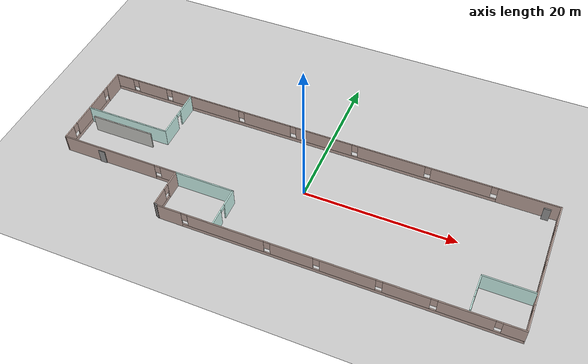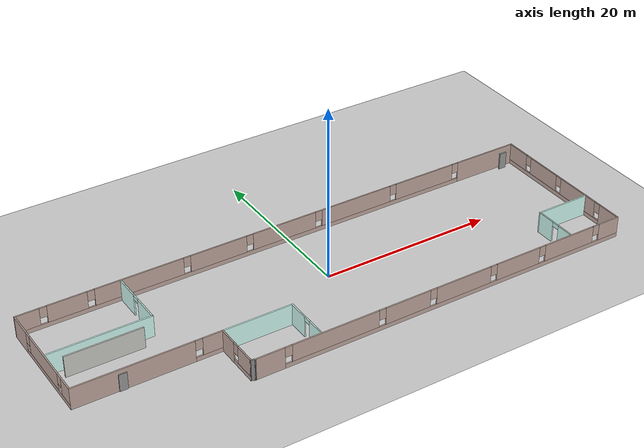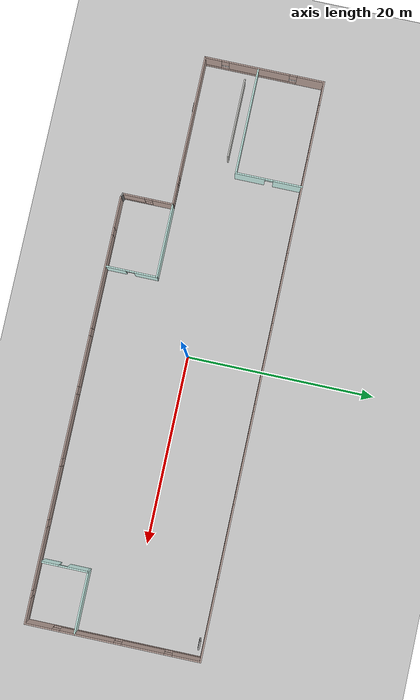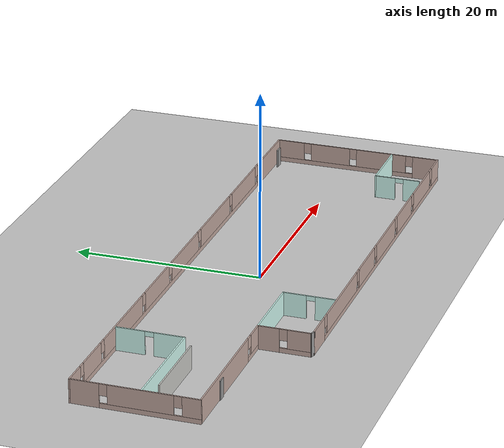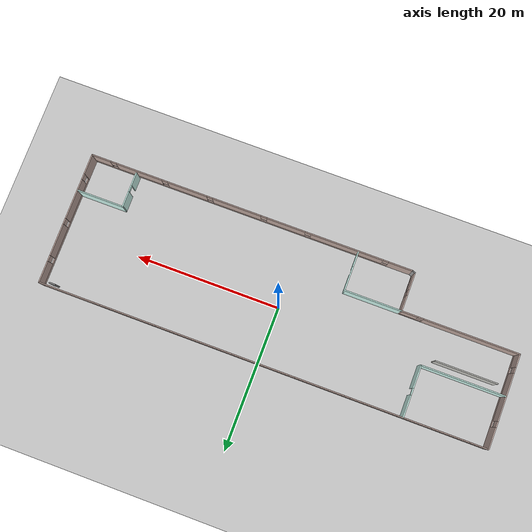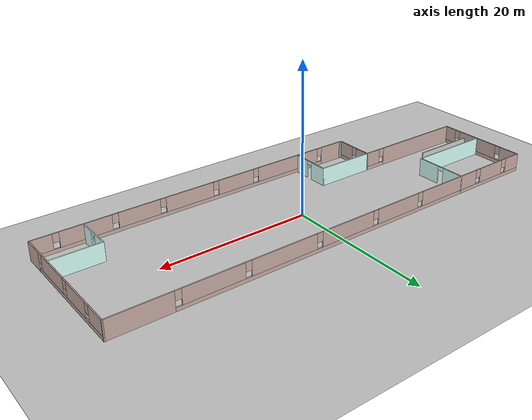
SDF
<sdf version="1.6">
 <world name="default">
  <model name="ground_plane">
   <static>1</static>
   <link name="link">
    <collision name="collision">
     <geometry><plane><normal>0 0 1</normal><size>100 100</size></plane></geometry>
     <surface>
      <contact><collide_bitmask>65535</collide_bitmask></contact>
      <friction><ode><mu>100</mu><mu2>50</mu2></ode></friction>
     </surface>
    </collision>
    <visual name="visual">
     <cast_shadows>0</cast_shadows>
     <geometry><plane><normal>0 0 1</normal><size>100 100</size></plane></geometry>
     <material>
      <script><uri>file://media/materials/scripts/gazebo.material</uri><name>Gazebo/Grey</name></script>
     </material>
    </visual>
   </link>
  </model>
  <model name="Building">
   <pose>-0.5104 -1.23056 0 0 -0 0</pose>
   <link name="Door_2">
    <collision name="Door_2_Collision">
     <geometry><box><size>0.9 0.17 2</size></box></geometry>
     <pose>0 0 1 0 -0 0</pose>
    </collision>
    <visual name="Door_2_Visual">
     <pose>0 0 1 0 -0 0</pose>
     <geometry><box><size>0.9 0.17 2</size></box></geometry>
     <material>
      <script><uri>file://media/materials/scripts/gazebo.material</uri><name>Gazebo/Grey</name></script>
     </material>
    </visual>
    <pose>-25.4725 -3.75552 0 0 -0 0</pose>
   </link>
   <link name="Door_3">
    <collision name="Door_3_Collision">
     <geometry><box><size>0.9 0.17 2</size></box></geometry>
     <pose>0 0 1 0 -0 0</pose>
    </collision>
    <visual name="Door_3_Visual">
     <pose>0 0 1 0 -0 0</pose>
     <geometry><box><size>0.9 0.17 2</size></box></geometry>
     <material>
      <script><uri>file://media/materials/scripts/gazebo.material</uri><name>Gazebo/Grey</name></script>
     </material>
    </visual>
    <pose>29.2873 8.73464 0 0 -0 0</pose>
   </link>
   <link name="Wall_21">
    <pose>8.25 -9.16807 0 0 -0 0</pose>
    <visual name="Wall_21_Visual_0">
     <pose>-20.9527 0 1.25 0 -0 0</pose>
     <geometry><box><size>3.34458 0.15 2.5</size></box></geometry>
     <material>
      <script><uri>file://media/materials/scripts/gazebo.material</uri><name>Gazebo/Grey</name></script>
      <ambient>0.760784 0.662745 0.627451 1</ambient>
     </material>
     <meta><layer>0</layer></meta>
    </visual>
    <collision name="Wall_21_Collision_0">
     <geometry><box><size>3.34458 0.15 2.5</size></box></geometry>
     <pose>-20.9527 0 1.25 0 -0 0</pose>
    </collision>
    <visual name="Wall_21_Visual_1">
     <pose>1.67229 0 0.25 0 -0 0</pose>
     <geometry><box><size>41.9054 0.15 0.5</size></box></geometry>
     <material>
      <script><uri>file://media/materials/scripts/gazebo.material</uri><name>Gazebo/Grey</name></script>
      <ambient>0.760784 0.662745 0.627451 1</ambient>
     </material>
     <meta><layer>0</layer></meta>
    </visual>
    <collision name="Wall_21_Collision_1">
     <geometry><box><size>41.9054 0.15 0.5</size></box></geometry>
     <pose>1.67229 0 0.25 0 -0 0</pose>
    </collision>
    <visual name="Wall_21_Visual_2">
     <pose>-13.466 0 1.5 0 -0 0</pose>
     <geometry><box><size>10.0289 0.15 2</size></box></geometry>
     <material>
      <script><uri>file://media/materials/scripts/gazebo.material</uri><name>Gazebo/Grey</name></script>
      <ambient>0.760784 0.662745 0.627451 1</ambient>
     </material>
     <meta><layer>0</layer></meta>
    </visual>
    <collision name="Wall_21_Collision_2">
     <geometry><box><size>10.0289 0.15 2</size></box></geometry>
     <pose>-13.466 0 1.5 0 -0 0</pose>
    </collision>
    <visual name="Wall_21_Visual_3">
     <pose>-4.94435 0 1.5 0 -0 0</pose>
     <geometry><box><size>5.41432 0.15 2</size></box></geometry>
     <material>
      <script><uri>file://media/materials/scripts/gazebo.material</uri><name>Gazebo/Grey</name></script>
      <ambient>0.760784 0.662745 0.627451 1</ambient>
     </material>
     <meta><layer>0</layer></meta>
    </visual>
    <collision name="Wall_21_Collision_3">
     <geometry><box><size>5.41432 0.15 2</size></box></geometry>
     <pose>-4.94435 0 1.5 0 -0 0</pose>
    </collision>
    <visual name="Wall_21_Visual_4">
     <pose>1.97753 0 1.5 0 -0 0</pose>
     <geometry><box><size>6.82946 0.15 2</size></box></geometry>
     <material>
      <script><uri>file://media/materials/scripts/gazebo.material</uri><name>Gazebo/Grey</name></script>
      <ambient>0.760784 0.662745 0.627451 1</ambient>
     </material>
     <meta><layer>0</layer></meta>
    </visual>
    <collision name="Wall_21_Collision_4">
     <geometry><box><size>6.82946 0.15 2</size></box></geometry>
     <pose>1.97753 0 1.5 0 -0 0</pose>
    </collision>
    <visual name="Wall_21_Visual_5">
     <pose>8.99171 0 1.5 0 -0 0</pose>
     <geometry><box><size>5.5989 0.15 2</size></box></geometry>
     <material>
      <script><uri>file://media/materials/scripts/gazebo.material</uri><name>Gazebo/Grey</name></script>
      <ambient>0.760784 0.662745 0.627451 1</ambient>
     </material>
     <meta><layer>0</layer></meta>
    </visual>
    <collision name="Wall_21_Collision_5">
     <geometry><box><size>5.5989 0.15 2</size></box></geometry>
     <pose>8.99171 0 1.5 0 -0 0</pose>
    </collision>
    <visual name="Wall_21_Visual_6">
     <pose>15.8521 0 1.5 0 -0 0</pose>
     <geometry><box><size>6.52182 0.15 2</size></box></geometry>
     <material>
      <script><uri>file://media/materials/scripts/gazebo.material</uri><name>Gazebo/Grey</name></script>
      <ambient>0.760784 0.662745 0.627451 1</ambient>
     </material>
     <meta><layer>0</layer></meta>
    </visual>
    <collision name="Wall_21_Collision_6">
     <geometry><box><size>6.52182 0.15 2</size></box></geometry>
     <pose>15.8521 0 1.5 0 -0 0</pose>
    </collision>
    <visual name="Wall_21_Visual_7">
     <pose>21.269 0 1.5 0 -0 0</pose>
     <geometry><box><size>2.71202 0.15 2</size></box></geometry>
     <material>
      <script><uri>file://media/materials/scripts/gazebo.material</uri><name>Gazebo/Grey</name></script>
      <ambient>0.760784 0.662745 0.627451 1</ambient>
     </material>
     <meta><layer>0</layer></meta>
    </visual>
    <collision name="Wall_21_Collision_7">
     <geometry><box><size>2.71202 0.15 2</size></box></geometry>
     <pose>21.269 0 1.5 0 -0 0</pose>
    </collision>
    <visual name="Wall_21_Visual_8">
     <pose>-18.8804 0 1.9 0 -0 0</pose>
     <geometry><box><size>0.8 0.15 1.2</size></box></geometry>
     <material>
      <script><uri>file://media/materials/scripts/gazebo.material</uri><name>Gazebo/Grey</name></script>
      <ambient>0.760784 0.662745 0.627451 1</ambient>
     </material>
     <meta><layer>0</layer></meta>
    </visual>
    <collision name="Wall_21_Collision_8">
     <geometry><box><size>0.8 0.15 1.2</size></box></geometry>
     <pose>-18.8804 0 1.9 0 -0 0</pose>
    </collision>
    <visual name="Wall_21_Visual_9">
     <pose>-8.05151 0 1.9 0 -0 0</pose>
     <geometry><box><size>0.8 0.15 1.2</size></box></geometry>
     <material>
      <script><uri>file://media/materials/scripts/gazebo.material</uri><name>Gazebo/Grey</name></script>
      <ambient>0.760784 0.662745 0.627451 1</ambient>
     </material>
     <meta><layer>0</layer></meta>
    </visual>
    <collision name="Wall_21_Collision_9">
     <geometry><box><size>0.8 0.15 1.2</size></box></geometry>
     <pose>-8.05151 0 1.9 0 -0 0</pose>
    </collision>
    <visual name="Wall_21_Visual_10">
     <pose>-1.83719 0 1.9 0 -0 0</pose>
     <geometry><box><size>0.8 0.15 1.2</size></box></geometry>
     <material>
      <script><uri>file://media/materials/scripts/gazebo.material</uri><name>Gazebo/Grey</name></script>
      <ambient>0.760784 0.662745 0.627451 1</ambient>
     </material>
     <meta><layer>0</layer></meta>
    </visual>
    <collision name="Wall_21_Collision_10">
     <geometry><box><size>0.8 0.15 1.2</size></box></geometry>
     <pose>-1.83719 0 1.9 0 -0 0</pose>
    </collision>
    <visual name="Wall_21_Visual_11">
     <pose>5.79226 0 1.9 0 -0 0</pose>
     <geometry><box><size>0.8 0.15 1.2</size></box></geometry>
     <material>
      <script><uri>file://media/materials/scripts/gazebo.material</uri><name>Gazebo/Grey</name></script>
      <ambient>0.760784 0.662745 0.627451 1</ambient>
     </material>
     <meta><layer>0</layer></meta>
    </visual>
    <collision name="Wall_21_Collision_11">
     <geometry><box><size>0.8 0.15 1.2</size></box></geometry>
     <pose>5.79226 0 1.9 0 -0 0</pose>
    </collision>
    <visual name="Wall_21_Visual_12">
     <pose>12.1912 0 1.9 0 -0 0</pose>
     <geometry><box><size>0.8 0.15 1.2</size></box></geometry>
     <material>
      <script><uri>file://media/materials/scripts/gazebo.material</uri><name>Gazebo/Grey</name></script>
      <ambient>0.760784 0.662745 0.627451 1</ambient>
     </material>
     <meta><layer>0</layer></meta>
    </visual>
    <collision name="Wall_21_Collision_12">
     <geometry><box><size>0.8 0.15 1.2</size></box></geometry>
     <pose>12.1912 0 1.9 0 -0 0</pose>
    </collision>
    <visual name="Wall_21_Visual_13">
     <pose>19.513 0 1.9 0 -0 0</pose>
     <geometry><box><size>0.8 0.15 1.2</size></box></geometry>
     <material>
      <script><uri>file://media/materials/scripts/gazebo.material</uri><name>Gazebo/Grey</name></script>
      <ambient>0.760784 0.662745 0.627451 1</ambient>
     </material>
     <meta><layer>0</layer></meta>
    </visual>
    <collision name="Wall_21_Collision_13">
     <geometry><box><size>0.8 0.15 1.2</size></box></geometry>
     <pose>19.513 0 1.9 0 -0 0</pose>
    </collision>
   </link>
   <link name="Wall_22">
    <pose>30.8 0.006928 0 0 -0 1.5708</pose>
    <visual name="Wall_22_Visual_0">
     <pose>-7.8084 0 1.25 0 -0 0</pose>
     <geometry><box><size>2.88319 0.15 2.5</size></box></geometry>
     <material>
      <script><uri>file://media/materials/scripts/gazebo.material</uri><name>Gazebo/Grey</name></script>
      <ambient>0.760784 0.662745 0.627451 1</ambient>
     </material>
     <meta><layer>0</layer></meta>
    </visual>
    <collision name="Wall_22_Collision_0">
     <geometry><box><size>2.88319 0.15 2.5</size></box></geometry>
     <pose>-7.8084 0 1.25 0 -0 0</pose>
    </collision>
    <visual name="Wall_22_Visual_1">
     <pose>1.44159 0 0.25 0 -0 0</pose>
     <geometry><box><size>15.6168 0.15 0.5</size></box></geometry>
     <material>
      <script><uri>file://media/materials/scripts/gazebo.material</uri><name>Gazebo/Grey</name></script>
      <ambient>0.760784 0.662745 0.627451 1</ambient>
     </material>
     <meta><layer>0</layer></meta>
    </visual>
    <collision name="Wall_22_Collision_1">
     <geometry><box><size>15.6168 0.15 0.5</size></box></geometry>
     <pose>1.44159 0 0.25 0 -0 0</pose>
    </collision>
    <visual name="Wall_22_Visual_2">
     <pose>-2.7366 0 1.5 0 -0 0</pose>
     <geometry><box><size>5.66043 0.15 2</size></box></geometry>
     <material>
      <script><uri>file://media/materials/scripts/gazebo.material</uri><name>Gazebo/Grey</name></script>
      <ambient>0.760784 0.662745 0.627451 1</ambient>
     </material>
     <meta><layer>0</layer></meta>
    </visual>
    <collision name="Wall_22_Collision_2">
     <geometry><box><size>5.66043 0.15 2</size></box></geometry>
     <pose>-2.7366 0 1.5 0 -0 0</pose>
    </collision>
    <visual name="Wall_22_Visual_3">
     <pose>3.13931 0 1.5 0 -0 0</pose>
     <geometry><box><size>4.4914 0.15 2</size></box></geometry>
     <material>
      <script><uri>file://media/materials/scripts/gazebo.material</uri><name>Gazebo/Grey</name></script>
      <ambient>0.760784 0.662745 0.627451 1</ambient>
     </material>
     <meta><layer>0</layer></meta>
    </visual>
    <collision name="Wall_22_Collision_3">
     <geometry><box><size>4.4914 0.15 2</size></box></geometry>
     <pose>3.13931 0 1.5 0 -0 0</pose>
    </collision>
    <visual name="Wall_22_Visual_4">
     <pose>7.71751 0 1.5 0 -0 0</pose>
     <geometry><box><size>3.06499 0.15 2</size></box></geometry>
     <material>
      <script><uri>file://media/materials/scripts/gazebo.material</uri><name>Gazebo/Grey</name></script>
      <ambient>0.760784 0.662745 0.627451 1</ambient>
     </material>
     <meta><layer>0</layer></meta>
    </visual>
    <collision name="Wall_22_Collision_4">
     <geometry><box><size>3.06499 0.15 2</size></box></geometry>
     <pose>7.71751 0 1.5 0 -0 0</pose>
    </collision>
    <visual name="Wall_22_Visual_5">
     <pose>-5.96681 0 1.9 0 -0 0</pose>
     <geometry><box><size>0.8 0.15 1.2</size></box></geometry>
     <material>
      <script><uri>file://media/materials/scripts/gazebo.material</uri><name>Gazebo/Grey</name></script>
      <ambient>0.760784 0.662745 0.627451 1</ambient>
     </material>
     <meta><layer>0</layer></meta>
    </visual>
    <collision name="Wall_22_Collision_5">
     <geometry><box><size>0.8 0.15 1.2</size></box></geometry>
     <pose>-5.96681 0 1.9 0 -0 0</pose>
    </collision>
    <visual name="Wall_22_Visual_6">
     <pose>0.493616 0 1.9 0 -0 0</pose>
     <geometry><box><size>0.8 0.15 1.2</size></box></geometry>
     <material>
      <script><uri>file://media/materials/scripts/gazebo.material</uri><name>Gazebo/Grey</name></script>
      <ambient>0.760784 0.662745 0.627451 1</ambient>
     </material>
     <meta><layer>0</layer></meta>
    </visual>
    <collision name="Wall_22_Collision_6">
     <geometry><box><size>0.8 0.15 1.2</size></box></geometry>
     <pose>0.493616 0 1.9 0 -0 0</pose>
    </collision>
    <visual name="Wall_22_Visual_7">
     <pose>5.78501 0 1.9 0 -0 0</pose>
     <geometry><box><size>0.8 0.15 1.2</size></box></geometry>
     <material>
      <script><uri>file://media/materials/scripts/gazebo.material</uri><name>Gazebo/Grey</name></script>
      <ambient>0.760784 0.662745 0.627451 1</ambient>
     </material>
     <meta><layer>0</layer></meta>
    </visual>
    <collision name="Wall_22_Collision_7">
     <geometry><box><size>0.8 0.15 1.2</size></box></geometry>
     <pose>5.78501 0 1.9 0 -0 0</pose>
    </collision>
   </link>
   <link name="Wall_23">
    <pose>0 9.18193 0 0 -0 3.14159</pose>
    <visual name="Wall_23_Visual_0">
     <pose>-26.9656 0 1.25 0 -0 0</pose>
     <geometry><box><size>7.81883 0.15 2.5</size></box></geometry>
     <material>
      <script><uri>file://media/materials/scripts/gazebo.material</uri><name>Gazebo/Grey</name></script>
      <ambient>0.760784 0.662745 0.627451 1</ambient>
     </material>
     <meta><layer>0</layer></meta>
    </visual>
    <collision name="Wall_23_Collision_0">
     <geometry><box><size>7.81883 0.15 2.5</size></box></geometry>
     <pose>-26.9656 0 1.25 0 -0 0</pose>
    </collision>
    <visual name="Wall_23_Visual_1">
     <pose>3.90942 0 0.25 0 -0 0</pose>
     <geometry><box><size>53.9312 0.15 0.5</size></box></geometry>
     <material>
      <script><uri>file://media/materials/scripts/gazebo.material</uri><name>Gazebo/Grey</name></script>
      <ambient>0.760784 0.662745 0.627451 1</ambient>
     </material>
     <meta><layer>0</layer></meta>
    </visual>
    <collision name="Wall_23_Collision_1">
     <geometry><box><size>53.9312 0.15 0.5</size></box></geometry>
     <pose>3.90942 0 0.25 0 -0 0</pose>
    </collision>
    <visual name="Wall_23_Visual_2">
     <pose>-18.38 0 1.5 0 -0 0</pose>
     <geometry><box><size>7.75237 0.15 2</size></box></geometry>
     <material>
      <script><uri>file://media/materials/scripts/gazebo.material</uri><name>Gazebo/Grey</name></script>
      <ambient>0.760784 0.662745 0.627451 1</ambient>
     </material>
     <meta><layer>0</layer></meta>
    </visual>
    <collision name="Wall_23_Collision_2">
     <geometry><box><size>7.75237 0.15 2</size></box></geometry>
     <pose>-18.38 0 1.5 0 -0 0</pose>
    </collision>
    <visual name="Wall_23_Visual_3">
     <pose>-9.21232 0 1.5 0 -0 0</pose>
     <geometry><box><size>8.98293 0.15 2</size></box></geometry>
     <material>
      <script><uri>file://media/materials/scripts/gazebo.material</uri><name>Gazebo/Grey</name></script>
      <ambient>0.760784 0.662745 0.627451 1</ambient>
     </material>
     <meta><layer>0</layer></meta>
    </visual>
    <collision name="Wall_23_Collision_3">
     <geometry><box><size>8.98293 0.15 2</size></box></geometry>
     <pose>-9.21232 0 1.5 0 -0 0</pose>
    </collision>
    <visual name="Wall_23_Visual_4">
     <pose>-0.013907 0 1.5 0 -0 0</pose>
     <geometry><box><size>7.8139 0.15 2</size></box></geometry>
     <material>
      <script><uri>file://media/materials/scripts/gazebo.material</uri><name>Gazebo/Grey</name></script>
      <ambient>0.760784 0.662745 0.627451 1</ambient>
     </material>
     <meta><layer>0</layer></meta>
    </visual>
    <collision name="Wall_23_Collision_4">
     <geometry><box><size>7.8139 0.15 2</size></box></geometry>
     <pose>-0.013907 0 1.5 0 -0 0</pose>
    </collision>
    <visual name="Wall_23_Visual_5">
     <pose>8.04625 0 1.5 0 -0 0</pose>
     <geometry><box><size>6.7064 0.15 2</size></box></geometry>
     <material>
      <script><uri>file://media/materials/scripts/gazebo.material</uri><name>Gazebo/Grey</name></script>
      <ambient>0.760784 0.662745 0.627451 1</ambient>
     </material>
     <meta><layer>0</layer></meta>
    </visual>
    <collision name="Wall_23_Collision_5">
     <geometry><box><size>6.7064 0.15 2</size></box></geometry>
     <pose>8.04625 0 1.5 0 -0 0</pose>
    </collision>
    <visual name="Wall_23_Visual_6">
     <pose>17.2447 0 1.5 0 -0 0</pose>
     <geometry><box><size>10.0904 0.15 2</size></box></geometry>
     <material>
      <script><uri>file://media/materials/scripts/gazebo.material</uri><name>Gazebo/Grey</name></script>
      <ambient>0.760784 0.662745 0.627451 1</ambient>
     </material>
     <meta><layer>0</layer></meta>
    </visual>
    <collision name="Wall_23_Collision_6">
     <geometry><box><size>10.0904 0.15 2</size></box></geometry>
     <pose>17.2447 0 1.5 0 -0 0</pose>
    </collision>
    <visual name="Wall_23_Visual_7">
     <pose>25.2741 0 1.5 0 -0 0</pose>
     <geometry><box><size>4.36834 0.15 2</size></box></geometry>
     <material>
      <script><uri>file://media/materials/scripts/gazebo.material</uri><name>Gazebo/Grey</name></script>
      <ambient>0.760784 0.662745 0.627451 1</ambient>
     </material>
     <meta><layer>0</layer></meta>
    </visual>
    <collision name="Wall_23_Collision_7">
     <geometry><box><size>4.36834 0.15 2</size></box></geometry>
     <pose>25.2741 0 1.5 0 -0 0</pose>
    </collision>
    <visual name="Wall_23_Visual_8">
     <pose>29.5666 0 1.5 0 -0 0</pose>
     <geometry><box><size>2.61678 0.15 2</size></box></geometry>
     <material>
      <script><uri>file://media/materials/scripts/gazebo.material</uri><name>Gazebo/Grey</name></script>
      <ambient>0.760784 0.662745 0.627451 1</ambient>
     </material>
     <meta><layer>0</layer></meta>
    </visual>
    <collision name="Wall_23_Collision_8">
     <geometry><box><size>2.61678 0.15 2</size></box></geometry>
     <pose>29.5666 0 1.5 0 -0 0</pose>
    </collision>
    <visual name="Wall_23_Visual_9">
     <pose>-22.6562 0 1.9 0 -0 0</pose>
     <geometry><box><size>0.8 0.15 1.2</size></box></geometry>
     <material>
      <script><uri>file://media/materials/scripts/gazebo.material</uri><name>Gazebo/Grey</name></script>
      <ambient>0.760784 0.662745 0.627451 1</ambient>
     </material>
     <meta><layer>0</layer></meta>
    </visual>
    <collision name="Wall_23_Collision_9">
     <geometry><box><size>0.8 0.15 1.2</size></box></geometry>
     <pose>-22.6562 0 1.9 0 -0 0</pose>
    </collision>
    <visual name="Wall_23_Visual_10">
     <pose>-14.1038 0 1.9 0 -0 0</pose>
     <geometry><box><size>0.8 0.15 1.2</size></box></geometry>
     <material>
      <script><uri>file://media/materials/scripts/gazebo.material</uri><name>Gazebo/Grey</name></script>
      <ambient>0.760784 0.662745 0.627451 1</ambient>
     </material>
     <meta><layer>0</layer></meta>
    </visual>
    <collision name="Wall_23_Collision_10">
     <geometry><box><size>0.8 0.15 1.2</size></box></geometry>
     <pose>-14.1038 0 1.9 0 -0 0</pose>
    </collision>
    <visual name="Wall_23_Visual_11">
     <pose>-4.32086 0 1.9 0 -0 0</pose>
     <geometry><box><size>0.8 0.15 1.2</size></box></geometry>
     <material>
      <script><uri>file://media/materials/scripts/gazebo.material</uri><name>Gazebo/Grey</name></script>
      <ambient>0.760784 0.662745 0.627451 1</ambient>
     </material>
     <meta><layer>0</layer></meta>
    </visual>
    <collision name="Wall_23_Collision_11">
     <geometry><box><size>0.8 0.15 1.2</size></box></geometry>
     <pose>-4.32086 0 1.9 0 -0 0</pose>
    </collision>
    <visual name="Wall_23_Visual_12">
     <pose>4.29304 0 1.9 0 -0 0</pose>
     <geometry><box><size>0.8 0.15 1.2</size></box></geometry>
     <material>
      <script><uri>file://media/materials/scripts/gazebo.material</uri><name>Gazebo/Grey</name></script>
      <ambient>0.760784 0.662745 0.627451 1</ambient>
     </material>
     <meta><layer>0</layer></meta>
    </visual>
    <collision name="Wall_23_Collision_12">
     <geometry><box><size>0.8 0.15 1.2</size></box></geometry>
     <pose>4.29304 0 1.9 0 -0 0</pose>
    </collision>
    <visual name="Wall_23_Visual_13">
     <pose>11.7994 0 1.9 0 -0 0</pose>
     <geometry><box><size>0.8 0.15 1.2</size></box></geometry>
     <material>
      <script><uri>file://media/materials/scripts/gazebo.material</uri><name>Gazebo/Grey</name></script>
      <ambient>0.760784 0.662745 0.627451 1</ambient>
     </material>
     <meta><layer>0</layer></meta>
    </visual>
    <collision name="Wall_23_Collision_13">
     <geometry><box><size>0.8 0.15 1.2</size></box></geometry>
     <pose>11.7994 0 1.9 0 -0 0</pose>
    </collision>
    <visual name="Wall_23_Visual_14">
     <pose>22.6899 0 1.9 0 -0 0</pose>
     <geometry><box><size>0.8 0.15 1.2</size></box></geometry>
     <material>
      <script><uri>file://media/materials/scripts/gazebo.material</uri><name>Gazebo/Grey</name></script>
      <ambient>0.760784 0.662745 0.627451 1</ambient>
     </material>
     <meta><layer>0</layer></meta>
    </visual>
    <collision name="Wall_23_Collision_14">
     <geometry><box><size>0.8 0.15 1.2</size></box></geometry>
     <pose>22.6899 0 1.9 0 -0 0</pose>
    </collision>
    <visual name="Wall_23_Visual_15">
     <pose>27.8582 0 1.9 0 -0 0</pose>
     <geometry><box><size>0.8 0.15 1.2</size></box></geometry>
     <material>
      <script><uri>file://media/materials/scripts/gazebo.material</uri><name>Gazebo/Grey</name></script>
      <ambient>0.760784 0.662745 0.627451 1</ambient>
     </material>
     <meta><layer>0</layer></meta>
    </visual>
    <collision name="Wall_23_Collision_15">
     <geometry><box><size>0.8 0.15 1.2</size></box></geometry>
     <pose>27.8582 0 1.9 0 -0 0</pose>
    </collision>
   </link>
   <link name="Wall_24">
    <pose>-30.8 2.75693 0 0 0 -1.5708</pose>
    <visual name="Wall_24_Visual_0">
     <pose>-4.99827 0 1.25 0 -0 0</pose>
     <geometry><box><size>3.00346 0.15 2.5</size></box></geometry>
     <material>
      <script><uri>file://media/materials/scripts/gazebo.material</uri><name>Gazebo/Grey</name></script>
      <ambient>0.760784 0.662745 0.627451 1</ambient>
     </material>
     <meta><layer>0</layer></meta>
    </visual>
    <collision name="Wall_24_Collision_0">
     <geometry><box><size>3.00346 0.15 2.5</size></box></geometry>
     <pose>-4.99827 0 1.25 0 -0 0</pose>
    </collision>
    <visual name="Wall_24_Visual_1">
     <pose>1.50173 0 0.25 0 -0 0</pose>
     <geometry><box><size>9.99654 0.15 0.5</size></box></geometry>
     <material>
      <script><uri>file://media/materials/scripts/gazebo.material</uri><name>Gazebo/Grey</name></script>
      <ambient>0.760784 0.662745 0.627451 1</ambient>
     </material>
     <meta><layer>0</layer></meta>
    </visual>
    <collision name="Wall_24_Collision_1">
     <geometry><box><size>9.99654 0.15 0.5</size></box></geometry>
     <pose>1.50173 0 0.25 0 -0 0</pose>
    </collision>
    <visual name="Wall_24_Visual_2">
     <pose>0.564367 0 1.5 0 -0 0</pose>
     <geometry><box><size>6.52182 0.15 2</size></box></geometry>
     <material>
      <script><uri>file://media/materials/scripts/gazebo.material</uri><name>Gazebo/Grey</name></script>
      <ambient>0.760784 0.662745 0.627451 1</ambient>
     </material>
     <meta><layer>0</layer></meta>
    </visual>
    <collision name="Wall_24_Collision_2">
     <geometry><box><size>6.52182 0.15 2</size></box></geometry>
     <pose>0.564367 0 1.5 0 -0 0</pose>
    </collision>
    <visual name="Wall_24_Visual_3">
     <pose>5.56264 0 1.5 0 -0 0</pose>
     <geometry><box><size>1.87472 0.15 2</size></box></geometry>
     <material>
      <script><uri>file://media/materials/scripts/gazebo.material</uri><name>Gazebo/Grey</name></script>
      <ambient>0.760784 0.662745 0.627451 1</ambient>
     </material>
     <meta><layer>0</layer></meta>
    </visual>
    <collision name="Wall_24_Collision_3">
     <geometry><box><size>1.87472 0.15 2</size></box></geometry>
     <pose>5.56264 0 1.5 0 -0 0</pose>
    </collision>
    <visual name="Wall_24_Visual_4">
     <pose>-3.09654 0 1.9 0 -0 0</pose>
     <geometry><box><size>0.8 0.15 1.2</size></box></geometry>
     <material>
      <script><uri>file://media/materials/scripts/gazebo.material</uri><name>Gazebo/Grey</name></script>
      <ambient>0.760784 0.662745 0.627451 1</ambient>
     </material>
     <meta><layer>0</layer></meta>
    </visual>
    <collision name="Wall_24_Collision_4">
     <geometry><box><size>0.8 0.15 1.2</size></box></geometry>
     <pose>-3.09654 0 1.9 0 -0 0</pose>
    </collision>
    <visual name="Wall_24_Visual_5">
     <pose>4.22528 0 1.9 0 -0 0</pose>
     <geometry><box><size>0.8 0.15 1.2</size></box></geometry>
     <material>
      <script><uri>file://media/materials/scripts/gazebo.material</uri><name>Gazebo/Grey</name></script>
      <ambient>0.760784 0.662745 0.627451 1</ambient>
     </material>
     <meta><layer>0</layer></meta>
    </visual>
    <collision name="Wall_24_Collision_5">
     <geometry><box><size>0.8 0.15 1.2</size></box></geometry>
     <pose>4.22528 0 1.9 0 -0 0</pose>
    </collision>
   </link>
   <link name="Wall_25">
    <pose>-22.75 -3.66807 0 0 -0 0</pose>
    <visual name="Wall_25_Visual_0">
     <pose>-1.55598 0 1.25 0 -0 0</pose>
     <geometry><box><size>13.138 0.15 2.5</size></box></geometry>
     <material>
      <script><uri>file://media/materials/scripts/gazebo.material</uri><name>Gazebo/Grey</name></script>
      <ambient>0.760784 0.662745 0.627451 1</ambient>
     </material>
     <meta><layer>0</layer></meta>
    </visual>
    <collision name="Wall_25_Collision_0">
     <geometry><box><size>13.138 0.15 2.5</size></box></geometry>
     <pose>-1.55598 0 1.25 0 -0 0</pose>
    </collision>
    <visual name="Wall_25_Visual_1">
     <pose>6.56902 0 0.25 0 -0 0</pose>
     <geometry><box><size>3.11195 0.15 0.5</size></box></geometry>
     <material>
      <script><uri>file://media/materials/scripts/gazebo.material</uri><name>Gazebo/Grey</name></script>
      <ambient>0.760784 0.662745 0.627451 1</ambient>
     </material>
     <meta><layer>0</layer></meta>
    </visual>
    <collision name="Wall_25_Collision_1">
     <geometry><box><size>3.11195 0.15 0.5</size></box></geometry>
     <pose>6.56902 0 0.25 0 -0 0</pose>
    </collision>
    <visual name="Wall_25_Visual_2">
     <pose>6.96902 0 1.5 0 -0 0</pose>
     <geometry><box><size>2.31195 0.15 2</size></box></geometry>
     <material>
      <script><uri>file://media/materials/scripts/gazebo.material</uri><name>Gazebo/Grey</name></script>
      <ambient>0.760784 0.662745 0.627451 1</ambient>
     </material>
     <meta><layer>0</layer></meta>
    </visual>
    <collision name="Wall_25_Collision_2">
     <geometry><box><size>2.31195 0.15 2</size></box></geometry>
     <pose>6.96902 0 1.5 0 -0 0</pose>
    </collision>
    <visual name="Wall_25_Visual_3">
     <pose>5.41305 0 1.9 0 -0 0</pose>
     <geometry><box><size>0.8 0.15 1.2</size></box></geometry>
     <material>
      <script><uri>file://media/materials/scripts/gazebo.material</uri><name>Gazebo/Grey</name></script>
      <ambient>0.760784 0.662745 0.627451 1</ambient>
     </material>
     <meta><layer>0</layer></meta>
    </visual>
    <collision name="Wall_25_Collision_3">
     <geometry><box><size>0.8 0.15 1.2</size></box></geometry>
     <pose>5.41305 0 1.9 0 -0 0</pose>
    </collision>
   </link>
   <link name="Wall_26">
    <pose>-14.7 -6.34307 0 0 0 -1.5708</pose>
    <visual name="Wall_26_Visual_0">
     <pose>-1.61278 0 1.25 0 -0 0</pose>
     <geometry><box><size>2.27445 0.15 2.5</size></box></geometry>
     <material>
      <script><uri>file://media/materials/scripts/gazebo.material</uri><name>Gazebo/Grey</name></script>
      <ambient>0.760784 0.662745 0.627451 1</ambient>
     </material>
     <meta><layer>0</layer></meta>
    </visual>
    <collision name="Wall_26_Collision_0">
     <geometry><box><size>2.27445 0.15 2.5</size></box></geometry>
     <pose>-1.61278 0 1.25 0 -0 0</pose>
    </collision>
    <visual name="Wall_26_Visual_1">
     <pose>1.13722 0 0.25 0 -0 0</pose>
     <geometry><box><size>3.22555 0.15 0.5</size></box></geometry>
     <material>
      <script><uri>file://media/materials/scripts/gazebo.material</uri><name>Gazebo/Grey</name></script>
      <ambient>0.760784 0.662745 0.627451 1</ambient>
     </material>
     <meta><layer>0</layer></meta>
    </visual>
    <collision name="Wall_26_Collision_1">
     <geometry><box><size>3.22555 0.15 0.5</size></box></geometry>
     <pose>1.13722 0 0.25 0 -0 0</pose>
    </collision>
    <visual name="Wall_26_Visual_2">
     <pose>1.53723 0 1.5 0 -0 0</pose>
     <geometry><box><size>2.42555 0.15 2</size></box></geometry>
     <material>
      <script><uri>file://media/materials/scripts/gazebo.material</uri><name>Gazebo/Grey</name></script>
      <ambient>0.760784 0.662745 0.627451 1</ambient>
     </material>
     <meta><layer>0</layer></meta>
    </visual>
    <collision name="Wall_26_Collision_2">
     <geometry><box><size>2.42555 0.15 2</size></box></geometry>
     <pose>1.53723 0 1.5 0 -0 0</pose>
    </collision>
    <visual name="Wall_26_Visual_3">
     <pose>-0.07555 0 1.9 0 -0 0</pose>
     <geometry><box><size>0.8 0.15 1.2</size></box></geometry>
     <material>
      <script><uri>file://media/materials/scripts/gazebo.material</uri><name>Gazebo/Grey</name></script>
      <ambient>0.760784 0.662745 0.627451 1</ambient>
     </material>
     <meta><layer>0</layer></meta>
    </visual>
    <collision name="Wall_26_Collision_3">
     <geometry><box><size>0.8 0.15 1.2</size></box></geometry>
     <pose>-0.07555 0 1.9 0 -0 0</pose>
    </collision>
   </link>
   <link name="Wall_27">
    <collision name="Wall_27_Collision">
     <geometry><box><size>0.5772 0.15 2.5</size></box></geometry>
     <pose>0 0 1.25 0 -0 0</pose>
    </collision>
    <visual name="Wall_27_Visual">
     <pose>0 0 1.25 0 -0 0</pose>
     <geometry><box><size>0.5772 0.15 2.5</size></box></geometry>
     <material>
      <script><uri>file://media/materials/scripts/gazebo.material</uri><name>Gazebo/Grey</name></script>
      <ambient>1 1 1 1</ambient>
     </material>
     <meta><layer>0</layer></meta>
    </visual>
    <pose>-14.5 -9.09307 0 0 0 -0.358771</pose>
   </link>
   <link name="Wall_31">
    <pose>-19.3563 5.63963 0 0 -0 1.5708</pose>
    <visual name="Wall_31_Visual_0">
     <pose>-2.02287 0 1.25 0 -0 0</pose>
     <geometry><box><size>3.20426 0.15 2.5</size></box></geometry>
     <material>
      <script><uri>file://media/materials/scripts/gazebo.material</uri><name>Gazebo/Grey</name></script>
      <ambient>0.831373 1 0.964706 1</ambient>
     </material>
     <meta><layer>0</layer></meta>
    </visual>
    <collision name="Wall_31_Collision_0">
     <geometry><box><size>3.20426 0.15 2.5</size></box></geometry>
     <pose>-2.02287 0 1.25 0 -0 0</pose>
    </collision>
    <visual name="Wall_31_Visual_1">
     <pose>2.05213 0 1.25 0 -0 0</pose>
     <geometry><box><size>3.14574 0.15 2.5</size></box></geometry>
     <material>
      <script><uri>file://media/materials/scripts/gazebo.material</uri><name>Gazebo/Grey</name></script>
      <ambient>0.831373 1 0.964706 1</ambient>
     </material>
     <meta><layer>0</layer></meta>
    </visual>
    <collision name="Wall_31_Collision_1">
     <geometry><box><size>3.14574 0.15 2.5</size></box></geometry>
     <pose>2.05213 0 1.25 0 -0 0</pose>
    </collision>
    <visual name="Wall_31_Visual_2">
     <pose>0.029256 0 2.25 0 -0 0</pose>
     <geometry><box><size>0.9 0.15 0.5</size></box></geometry>
     <material>
      <script><uri>file://media/materials/scripts/gazebo.material</uri><name>Gazebo/Grey</name></script>
      <ambient>0.831373 1 0.964706 1</ambient>
     </material>
     <meta><layer>0</layer></meta>
    </visual>
    <collision name="Wall_31_Collision_2">
     <geometry><box><size>0.9 0.15 0.5</size></box></geometry>
     <pose>0.029256 0 2.25 0 -0 0</pose>
    </collision>
   </link>
   <link name="Wall_33">
    <collision name="Wall_33_Collision">
     <geometry><box><size>11.5 0.15 2.5</size></box></geometry>
     <pose>0 0 1.25 0 -0 0</pose>
    </collision>
    <visual name="Wall_33_Visual">
     <pose>0 0 1.25 0 -0 0</pose>
     <geometry><box><size>11.5 0.15 2.5</size></box></geometry>
     <material>
      <script><uri>file://media/materials/scripts/gazebo.material</uri><name>Gazebo/Grey</name></script>
      <ambient>0.831373 1 0.964706 1</ambient>
     </material>
     <meta><layer>0</layer></meta>
    </visual>
    <pose>-25.0313 2.08963 0 0 -0 3.14159</pose>
   </link>
   <link name="Wall_35">
    <collision name="Wall_35_Collision">
     <geometry><box><size>8.5 0.15 2.5</size></box></geometry>
     <pose>0 0 1.25 0 -0 0</pose>
    </collision>
    <visual name="Wall_35_Visual">
     <pose>0 0 1.25 0 -0 0</pose>
     <geometry><box><size>8.5 0.15 2.5</size></box></geometry>
     <material>
      <script><uri>file://media/materials/scripts/gazebo.material</uri><name>Gazebo/CeilingTiled</name></script>
      <ambient>1 1 1 1</ambient>
     </material>
     <meta><layer>0</layer></meta>
    </visual>
    <pose>-25.1122 0.9206 0 0 -0 0</pose>
   </link>
   <link name="Wall_37">
    <collision name="Wall_37_Collision">
     <geometry><box><size>6.5 0.15 2.5</size></box></geometry>
     <pose>0 0 1.25 0 -0 0</pose>
    </collision>
    <visual name="Wall_37_Visual">
     <pose>0 0 1.25 0 -0 0</pose>
     <geometry><box><size>6.5 0.15 2.5</size></box></geometry>
     <material>
      <script><uri>file://media/materials/scripts/gazebo.material</uri><name>Gazebo/Grey</name></script>
      <ambient>0.831373 1 0.964706 1</ambient>
     </material>
     <meta><layer>0</layer></meta>
    </visual>
    <pose>27.5413 -3.99099 0 0 -0 3.14159</pose>
   </link>
   <link name="Wall_38">
    <pose>24.3663 -6.41599 0 0 0 -1.5708</pose>
    <visual name="Wall_38_Visual_0">
     <pose>-1.36465 0 1.25 0 -0 0</pose>
     <geometry><box><size>2.2707 0.15 2.5</size></box></geometry>
     <material>
      <script><uri>file://media/materials/scripts/gazebo.material</uri><name>Gazebo/Grey</name></script>
      <ambient>0.831373 1 0.964706 1</ambient>
     </material>
     <meta><layer>0</layer></meta>
    </visual>
    <collision name="Wall_38_Collision_0">
     <geometry><box><size>2.2707 0.15 2.5</size></box></geometry>
     <pose>-1.36465 0 1.25 0 -0 0</pose>
    </collision>
    <visual name="Wall_38_Visual_1">
     <pose>1.58535 0 1.25 0 -0 0</pose>
     <geometry><box><size>1.8293 0.15 2.5</size></box></geometry>
     <material>
      <script><uri>file://media/materials/scripts/gazebo.material</uri><name>Gazebo/Grey</name></script>
      <ambient>0.831373 1 0.964706 1</ambient>
     </material>
     <meta><layer>0</layer></meta>
    </visual>
    <collision name="Wall_38_Collision_1">
     <geometry><box><size>1.8293 0.15 2.5</size></box></geometry>
     <pose>1.58535 0 1.25 0 -0 0</pose>
    </collision>
    <visual name="Wall_38_Visual_2">
     <pose>0.220698 0 2.25 0 -0 0</pose>
     <geometry><box><size>0.9 0.15 0.5</size></box></geometry>
     <material>
      <script><uri>file://media/materials/scripts/gazebo.material</uri><name>Gazebo/Grey</name></script>
      <ambient>0.831373 1 0.964706 1</ambient>
     </material>
     <meta><layer>0</layer></meta>
    </visual>
    <collision name="Wall_38_Collision_2">
     <geometry><box><size>0.9 0.15 0.5</size></box></geometry>
     <pose>0.220698 0 2.25 0 -0 0</pose>
    </collision>
   </link>
   <link name="Wall_40">
    <collision name="Wall_40_Collision">
     <geometry><box><size>8 0.15 2.5</size></box></geometry>
     <pose>0 0 1.25 0 -0 0</pose>
    </collision>
    <visual name="Wall_40_Visual">
     <pose>0 0 1.25 0 -0 0</pose>
     <geometry><box><size>8 0.15 2.5</size></box></geometry>
     <material>
      <script><uri>file://media/materials/scripts/gazebo.material</uri><name>Gazebo/Grey</name></script>
      <ambient>0.831373 1 0.964706 1</ambient>
     </material>
     <meta><layer>0</layer></meta>
    </visual>
    <pose>-10.775 -3.66807 0 0 -0 0</pose>
   </link>
   <link name="Wall_41">
    <pose>-6.85 -6.34307 0 0 0 -1.5708</pose>
    <visual name="Wall_41_Visual_0">
     <pose>-1.51472 0 1.25 0 -0 0</pose>
     <geometry><box><size>2.47056 0.15 2.5</size></box></geometry>
     <material>
      <script><uri>file://media/materials/scripts/gazebo.material</uri><name>Gazebo/Grey</name></script>
      <ambient>0.831373 1 0.964706 1</ambient>
     </material>
     <meta><layer>0</layer></meta>
    </visual>
    <collision name="Wall_41_Collision_0">
     <geometry><box><size>2.47056 0.15 2.5</size></box></geometry>
     <pose>-1.51472 0 1.25 0 -0 0</pose>
    </collision>
    <visual name="Wall_41_Visual_1">
     <pose>1.68528 0 1.25 0 -0 0</pose>
     <geometry><box><size>2.12944 0.15 2.5</size></box></geometry>
     <material>
      <script><uri>file://media/materials/scripts/gazebo.material</uri><name>Gazebo/Grey</name></script>
      <ambient>0.831373 1 0.964706 1</ambient>
     </material>
     <meta><layer>0</layer></meta>
    </visual>
    <collision name="Wall_41_Collision_1">
     <geometry><box><size>2.12944 0.15 2.5</size></box></geometry>
     <pose>1.68528 0 1.25 0 -0 0</pose>
    </collision>
    <visual name="Wall_41_Visual_2">
     <pose>0.170562 0 2.25 0 -0 0</pose>
     <geometry><box><size>0.9 0.15 0.5</size></box></geometry>
     <material>
      <script><uri>file://media/materials/scripts/gazebo.material</uri><name>Gazebo/Grey</name></script>
      <ambient>0.831373 1 0.964706 1</ambient>
     </material>
     <meta><layer>0</layer></meta>
    </visual>
    <collision name="Wall_41_Collision_2">
     <geometry><box><size>0.9 0.15 0.5</size></box></geometry>
     <pose>0.170562 0 2.25 0 -0 0</pose>
    </collision>
   </link>
   <static>1</static>
  </model>
 </world>
</sdf>
